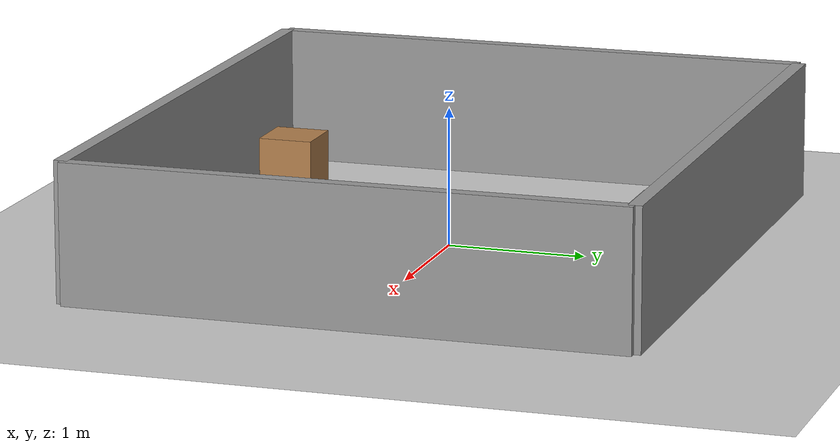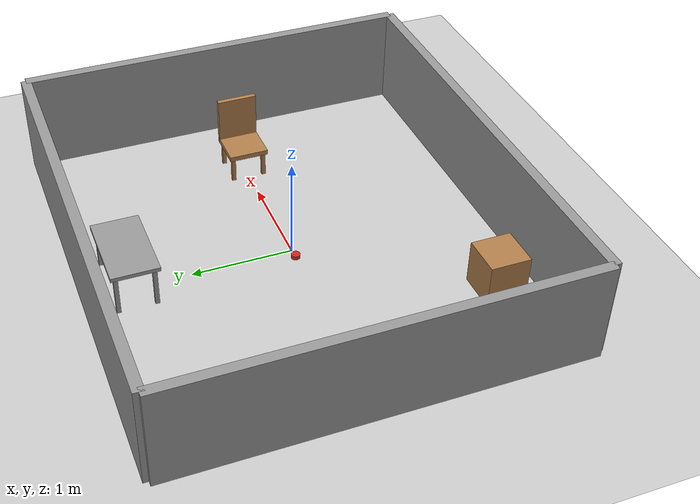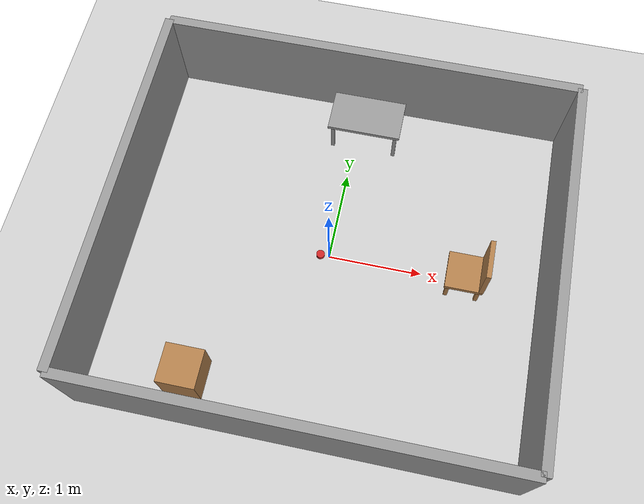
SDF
<?xml version="1.0" ?>
<sdf version="1.6">
  <world name="semantic_room_floor_object">
    <!-- 1) 床の小物を回避。初期姿勢は select_world.sh: x=-1.55 y=0.00 yaw=0 -->
    <include><uri>model://ground_plane</uri></include>
    <include><uri>model://sun</uri></include>
    <scene>
      <ambient>0.32 0.32 0.32 1</ambient>
      <background>0.68 0.72 0.76 1</background>
      <shadows>0</shadows>
    </scene>
    <light name="ceiling" type="point">
      <pose>0.3 0 2.4 0 0 0</pose>
      <diffuse>0.4 0.4 0.38 1</diffuse>
      <specular>0.04 0.04 0.04 1</specular>
      <attenuation>
        <range>8</range>
        <constant>0.55</constant>
        <linear>0.18</linear>
        <quadratic>0.05</quadratic>
      </attenuation>
      <cast_shadows>0</cast_shadows>
    </light>
    <physics type="ode">
      <max_step_size>0.001</max_step_size>
      <real_time_update_rate>1000</real_time_update_rate>
      <real_time_factor>1</real_time_factor>
    </physics>
    <gui fullscreen="0">
      <camera name="user_camera">
        <pose>0.2 -5.2 3.2 0 0.55 1.5708</pose>
      </camera>
    </gui>
    <model name="walls">
      <static>true</static>
      <pose>0 0 0 0 0 0</pose>
      <link name="link">
        <visual name="north"><pose>0.0500 2.0000 0.5 0 0 0</pose><geometry><box><size>4.5000 0.1000 1.0</size></box></geometry><material><script><uri>file://media/materials/scripts/gazebo.material</uri><name>Gazebo/Grey</name></script></material></visual>
        <collision name="north"><pose>0.0500 2.0000 0.5 0 0 0</pose><geometry><box><size>4.5000 0.1000 1.0</size></box></geometry></collision>
        <visual name="south"><pose>0.0500 -2.0000 0.5 0 0 0</pose><geometry><box><size>4.5000 0.1000 1.0</size></box></geometry><material><script><uri>file://media/materials/scripts/gazebo.material</uri><name>Gazebo/Grey</name></script></material></visual>
        <collision name="south"><pose>0.0500 -2.0000 0.5 0 0 0</pose><geometry><box><size>4.5000 0.1000 1.0</size></box></geometry></collision>
        <visual name="west"><pose>-2.2000 0.0000 0.5 0 0 0</pose><geometry><box><size>0.1000 4.0000 1.0</size></box></geometry><material><script><uri>file://media/materials/scripts/gazebo.material</uri><name>Gazebo/Grey</name></script></material></visual>
        <collision name="west"><pose>-2.2000 0.0000 0.5 0 0 0</pose><geometry><box><size>0.1000 4.0000 1.0</size></box></geometry></collision>
        <visual name="east"><pose>2.3000 0.0000 0.5 0 0 0</pose><geometry><box><size>0.1000 4.0000 1.0</size></box></geometry><material><script><uri>file://media/materials/scripts/gazebo.material</uri><name>Gazebo/Grey</name></script></material></visual>
        <collision name="east"><pose>2.3000 0.0000 0.5 0 0 0</pose><geometry><box><size>0.1000 4.0000 1.0</size></box></geometry></collision>
      </link>
    </model>
    <model name="chair">
      <static>true</static>
      <pose>1.4500 0.0000 0.0000 0 0 0.0000</pose>
      <link name="link">
        <visual name="seat"><pose>0.0000 0.0000 0.2800 0 0 0.0000</pose><geometry><box><size>0.4000 0.4000 0.0500</size></box></geometry><material><script><uri>file://media/materials/scripts/gazebo.material</uri><name>Gazebo/Wood</name></script></material></visual>
        <collision name="seat"><pose>0.0000 0.0000 0.2800 0 0 0.0000</pose><geometry><box><size>0.4000 0.4000 0.0500</size></box></geometry></collision>
        <visual name="back"><pose>0.1800 0.0000 0.5200 0 0 0.0000</pose><geometry><box><size>0.0500 0.4000 0.4600</size></box></geometry><material><script><uri>file://media/materials/scripts/gazebo.material</uri><name>Gazebo/Wood</name></script></material></visual>
        <collision name="back"><pose>0.1800 0.0000 0.5200 0 0 0.0000</pose><geometry><box><size>0.0500 0.4000 0.4600</size></box></geometry></collision>
        <visual name="leg_fl"><pose>0.1600 0.1600 0.1400 0 0 0.0000</pose><geometry><box><size>0.0400 0.0400 0.2800</size></box></geometry><material><script><uri>file://media/materials/scripts/gazebo.material</uri><name>Gazebo/Wood</name></script></material></visual>
        <collision name="leg_fl"><pose>0.1600 0.1600 0.1400 0 0 0.0000</pose><geometry><box><size>0.0400 0.0400 0.2800</size></box></geometry></collision>
        <visual name="leg_fr"><pose>0.1600 -0.1600 0.1400 0 0 0.0000</pose><geometry><box><size>0.0400 0.0400 0.2800</size></box></geometry><material><script><uri>file://media/materials/scripts/gazebo.material</uri><name>Gazebo/Wood</name></script></material></visual>
        <collision name="leg_fr"><pose>0.1600 -0.1600 0.1400 0 0 0.0000</pose><geometry><box><size>0.0400 0.0400 0.2800</size></box></geometry></collision>
        <visual name="leg_bl"><pose>-0.1600 0.1600 0.1400 0 0 0.0000</pose><geometry><box><size>0.0400 0.0400 0.2800</size></box></geometry><material><script><uri>file://media/materials/scripts/gazebo.material</uri><name>Gazebo/Wood</name></script></material></visual>
        <collision name="leg_bl"><pose>-0.1600 0.1600 0.1400 0 0 0.0000</pose><geometry><box><size>0.0400 0.0400 0.2800</size></box></geometry></collision>
        <visual name="leg_br"><pose>-0.1600 -0.1600 0.1400 0 0 0.0000</pose><geometry><box><size>0.0400 0.0400 0.2800</size></box></geometry><material><script><uri>file://media/materials/scripts/gazebo.material</uri><name>Gazebo/Wood</name></script></material></visual>
        <collision name="leg_br"><pose>-0.1600 -0.1600 0.1400 0 0 0.0000</pose><geometry><box><size>0.0400 0.0400 0.2800</size></box></geometry></collision>
      </link>
    </model>
    <model name="floor_object">
      <static>true</static>
      <pose>-0.1000 0.0000 0.0000 0 0 0.0000</pose>
      <link name="link">
        <visual name="body"><pose>0.0000 0.0000 0.0200 0 0 0.0000</pose><geometry><cylinder><radius>0.0450</radius><length>0.0400</length></cylinder></geometry><material><script><uri>file://media/materials/scripts/gazebo.material</uri><name>Gazebo/Red</name></script></material></visual>
        <collision name="body"><pose>0.0000 0.0000 0.0200 0 0 0.0000</pose><geometry><cylinder><radius>0.0450</radius><length>0.0400</length></cylinder></geometry></collision>
      </link>
    </model>
    <model name="table">
      <static>true</static>
      <pose>0.1000 1.5800 0.0000 0 0 0.0000</pose>
      <link name="link">
        <visual name="top"><pose>0.0000 0.0000 0.4200 0 0 0.0000</pose><geometry><box><size>0.8000 0.4600 0.0400</size></box></geometry><material><script><uri>file://media/materials/scripts/gazebo.material</uri><name>Gazebo/Grey</name></script></material></visual>
        <collision name="top"><pose>0.0000 0.0000 0.4200 0 0 0.0000</pose><geometry><box><size>0.8000 0.4600 0.0400</size></box></geometry></collision>
        <visual name="leg_fl"><pose>0.3500 0.1800 0.2000 0 0 0.0000</pose><geometry><box><size>0.0400 0.0400 0.4000</size></box></geometry><material><script><uri>file://media/materials/scripts/gazebo.material</uri><name>Gazebo/Grey</name></script></material></visual>
        <collision name="leg_fl"><pose>0.3500 0.1800 0.2000 0 0 0.0000</pose><geometry><box><size>0.0400 0.0400 0.4000</size></box></geometry></collision>
        <visual name="leg_fr"><pose>0.3500 -0.1800 0.2000 0 0 0.0000</pose><geometry><box><size>0.0400 0.0400 0.4000</size></box></geometry><material><script><uri>file://media/materials/scripts/gazebo.material</uri><name>Gazebo/Grey</name></script></material></visual>
        <collision name="leg_fr"><pose>0.3500 -0.1800 0.2000 0 0 0.0000</pose><geometry><box><size>0.0400 0.0400 0.4000</size></box></geometry></collision>
        <visual name="leg_bl"><pose>-0.3500 0.1800 0.2000 0 0 0.0000</pose><geometry><box><size>0.0400 0.0400 0.4000</size></box></geometry><material><script><uri>file://media/materials/scripts/gazebo.material</uri><name>Gazebo/Grey</name></script></material></visual>
        <collision name="leg_bl"><pose>-0.3500 0.1800 0.2000 0 0 0.0000</pose><geometry><box><size>0.0400 0.0400 0.4000</size></box></geometry></collision>
        <visual name="leg_br"><pose>-0.3500 -0.1800 0.2000 0 0 0.0000</pose><geometry><box><size>0.0400 0.0400 0.4000</size></box></geometry><material><script><uri>file://media/materials/scripts/gazebo.material</uri><name>Gazebo/Grey</name></script></material></visual>
        <collision name="leg_br"><pose>-0.3500 -0.1800 0.2000 0 0 0.0000</pose><geometry><box><size>0.0400 0.0400 0.4000</size></box></geometry></collision>
      </link>
    </model>
    <model name="crate">
      <static>true</static>
      <pose>-1.1500 -1.5800 0.2200 0 0 0.0000</pose>
      <link name="link">
        <visual name="body"><pose>0.0000 0.0000 0.0000 0 0 0.0000</pose><geometry><box><size>0.4000 0.4000 0.4400</size></box></geometry><material><script><uri>file://media/materials/scripts/gazebo.material</uri><name>Gazebo/Wood</name></script></material></visual>
        <collision name="body"><pose>0.0000 0.0000 0.0000 0 0 0.0000</pose><geometry><box><size>0.4000 0.4000 0.4400</size></box></geometry></collision>
      </link>
    </model>
  </world>
</sdf>
